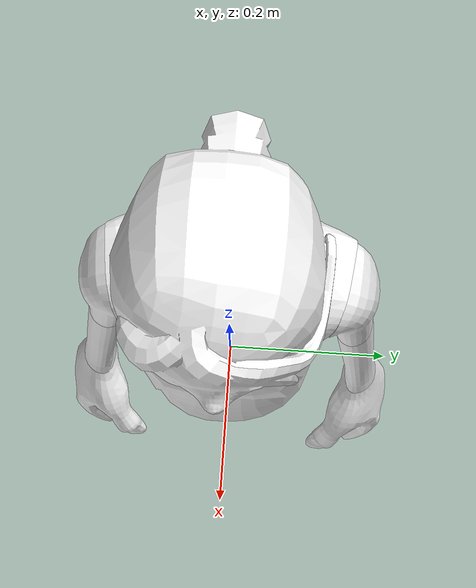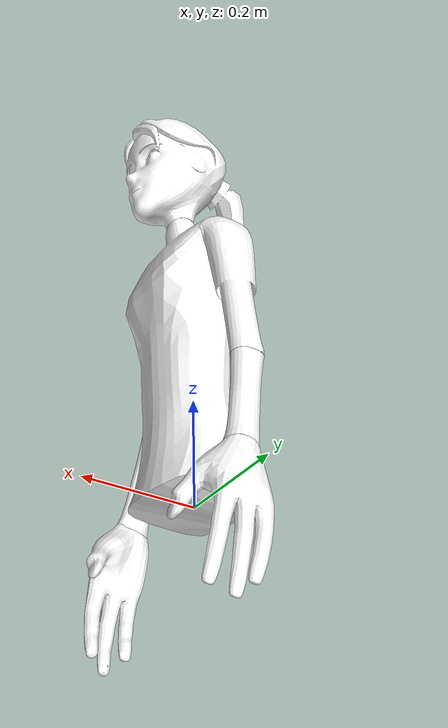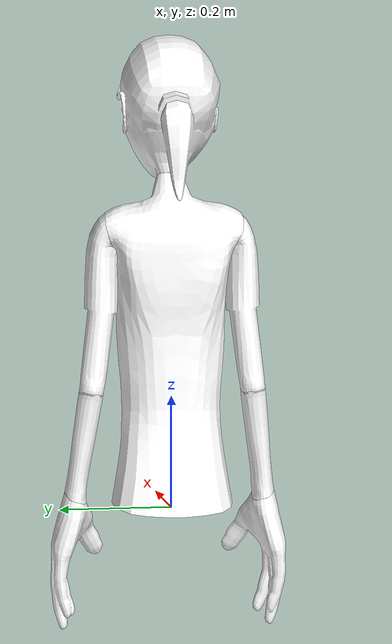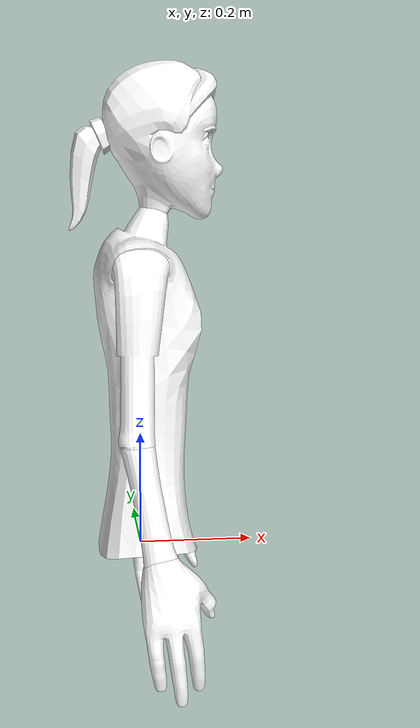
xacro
<?xml version="1.0"?>
<robot xmlns:xacro="http://www.ros.org/wiki/xacro" name="human_torso">
    <material name="white">
        <color rgba="1.0 1.0 1.0 1.0"/>
    </material>

    <xacro:property name="models_path" value="./" />

<xacro:macro name="human_head" params="prefix base_link joint_type *origin">

    <xacro:property name="head_width" value="0.27" />
    <xacro:property name="head_height" value="0.4" />
    <xacro:property name="head_depth" value="0.32" />

    <xacro:property name="tilt_up_limit" value="0.95993" />
    <xacro:property name="tilt_down_limit" value="1.57079" />
    <xacro:property name="tilt_effort" value="1000.0" />
    <xacro:property name="tilt_velocity" value="0.5" />

    <xacro:property name="roll_limit" value="0.61086" />
    <xacro:property name="roll_effort" value="1000.0" />
    <xacro:property name="roll_velocity" value="0.5" />

    <xacro:property name="pan_limit" value="1.22173" />
    <xacro:property name="pan_effort" value="1000.0" />
    <xacro:property name="pan_velocity" value="0.5" />

    <link name="${prefix}head_roll">
        <visual>
            <geometry>
                <mesh filename="${models_path}/head.obj"/>
            </geometry>
            <origin xyz="0 0 0" rpy="0 0 0"/>
            <material name="white"/>
        </visual>
        <collision>
            <geometry>
                <box size="${head_depth} ${head_width} ${head_height}"/>
            </geometry>
            <origin xyz="0.03 0 ${head_height/2 - 0.02}" rpy="0 0 0"/>
        </collision>

        <inertial>
           <mass value="5.0" />
           <origin xyz="0 0 0" rpy="0 0 0"/>
           <inertia ixx="0.5"  ixy="0"  ixz="0" iyy="0.5" iyz="0" izz="0.5" />
        </inertial>
    </link>

    <link name="${prefix}head_tilt">
        <inertial>
           <mass value="0.01" />
           <origin xyz="0 0 0" rpy="0 0 0"/>
           <inertia ixx="0.001"  ixy="0"  ixz="0" iyy="0.001" iyz="0" izz="0.001" />
        </inertial>
    </link>

    <link name="${prefix}head_pan">
        <inertial>
           <mass value="0.01" />
           <origin xyz="0 0 0" rpy="0 0 0"/>
           <inertia ixx="0.001"  ixy="0"  ixz="0" iyy="0.001" iyz="0" izz="0.001" />
        </inertial>
    </link>

    <joint name="${prefix}pan_joint" type="${joint_type}">
        <axis xyz="0 0 1"/>
        <limit
                effort="${pan_effort}"
                lower="-${pan_limit}"
                upper="${pan_limit}"
                velocity="${pan_velocity}"
        />
        <xacro:insert_block name="origin" />
        <parent link="${base_link}"/>
        <child link="${prefix}head_pan"/>
    </joint>

    <joint name="${prefix}tilt_joint" type="${joint_type}">
        <axis xyz="0 1 0"/>
        <limit
                effort="${tilt_effort}"
                lower="-${tilt_down_limit}"
                upper="${tilt_up_limit}"
                velocity="${tilt_velocity}"
        />
        <origin xyz="0 0 0" rpy="0 0 0"/>
        <parent link="${prefix}head_pan"/>
        <child link="${prefix}head_tilt"/>
    </joint>

    <joint name="${prefix}roll_joint" type="${joint_type}">
        <axis xyz="1 0 0"/>
        <limit
                effort="${roll_effort}"
                lower="-${roll_limit}"
                upper="${roll_limit}"
                velocity="${roll_velocity}"
        />
        <origin xyz="0 0 0" rpy="0 0 0"/>
        <parent link="${prefix}head_tilt"/>
        <child link="${prefix}head_roll"/>
    </joint>
</xacro:macro>

<xacro:macro name="human_arm" params="prefix base_link reflect joint_type *origin">

    <xacro:property name="arm_width" value="0.1" />
    <xacro:property name="arm_height" value="0.33" />
    <xacro:property name="arm_depth" value="0.07" />

    <xacro:property name="forearm_width" value="0.07" />
    <xacro:property name="forearm_height" value="0.2" />
    <xacro:property name="forearm_depth" value="0.07" />

    <xacro:property name="palm_width" value="0.16" />
    <xacro:property name="palm_height" value="0.23" />
    <xacro:property name="palm_depth" value="0.11" />

    <xacro:property name="shoulder_abduction_limit" value="3.1415" />
    <xacro:property name="shoulder_adduction_limit" value="0.0" />
    <xacro:property name="shoulder_abduction_adduction_effort" value="1000.0" />
    <xacro:property name="shoulder_abduction_adduction_velocity" value="2.5" />

    <xacro:property name="shoulder_horizontal_flexion_limit" value="2.26892" />
    <xacro:property name="shoulder_horizontal_extension_limit" value="-0.78539" />
    <xacro:property name="shoulder_horizontal_flexion_extension_effort" value="1000.0" />
    <xacro:property name="shoulder_horizontal_flexion_extension_velocity" value="2.5" />

    <xacro:property name="shoulder_vertical_flexion_limit" value="3.1415" />
    <xacro:property name="shoulder_vertical_extension_limit" value="-1.04719" />
    <xacro:property name="shoulder_vertical_flexion_extension_effort" value="1000.0" />
    <xacro:property name="shoulder_vertical_flexion_extension_velocity" value="2.5" />

    <xacro:property name="elbow_flexion_limit" value="0" />
    <xacro:property name="elbow_extension_limit" value="-2.61799" />
    <xacro:property name="elbow_flexion_extension_effort" value="1000.0" />
    <xacro:property name="elbow_flexion_extension_velocity" value="2.5" />

    <xacro:property name="elbow_pronation_limit" value="-3.1415" />
    <xacro:property name="elbow_supination_limit" value="1.57079" />
    <xacro:property name="elbow_pronation_supination_effort" value="1000.0" />
    <xacro:property name="elbow_pronation_supination_velocity" value="2.5" />

    <xacro:property name="wrist_flexion_limit" value="-1.57079" />
    <xacro:property name="wrist_extension_limit" value="1.22173" />
    <xacro:property name="wrist_flexion_extension_effort" value="1000.0" />
    <xacro:property name="wrist_flexion_extension_velocity" value="2.5" />

    <xacro:property name="wrist_radial_limit" value="-0.34906" />
    <xacro:property name="wrist_ulnar_limit" value="0.87266" />
    <xacro:property name="wrist_radial_ulnar_effort" value="1000.0" />
    <xacro:property name="wrist_radial_ulnar_velocity" value="2.5" />

    <link name="${prefix}shoulder_abduction_adduction">
        <inertial>
           <mass value="0.01" />
           <origin xyz="0 0 0" rpy="0 0 0"/>
           <inertia ixx="0.001"  ixy="0"  ixz="0" iyy="0.001" iyz="0" izz="0.001" />
        </inertial>
    </link>

    <link name="${prefix}shoulder_horizontal_flexion_extension">
        <inertial>
           <mass value="0.01" />
           <origin xyz="0 0 0" rpy="0 0 0"/>
           <inertia ixx="0.001"  ixy="0"  ixz="0" iyy="0.001" iyz="0" izz="0.001" />
        </inertial>
    </link>

    <link name="${prefix}shoulder_vertical_flexion_extension">
        <visual>
            <geometry>
                <mesh filename="${models_path}/${prefix}arm.obj"/>
            </geometry>
            <origin xyz="0 0 0" rpy="0 0 0"/>
            <material name="white"/>
        </visual>
        <collision>
            <geometry>
                <box size="${arm_width} ${arm_depth} ${arm_height}"/>
            </geometry>
            <origin xyz="0 ${reflect*0.015} ${-arm_height/2+0.03}" rpy="${reflect*0.1} 0 0"/>
        </collision>

        <inertial>
           <mass value="3.5" />
           <origin xyz="0 0 0" rpy="0 0 0"/>
           <inertia ixx="0.3"  ixy="0"  ixz="0" iyy="0.3" iyz="0" izz="0.3" />
        </inertial>
    </link>

    <link name="${prefix}elbow_flexion_extension">
        <inertial>
           <mass value="0.01" />
           <origin xyz="0 0 0" rpy="0 0 0"/>
           <inertia ixx="0.001"  ixy="0"  ixz="0" iyy="0.001" iyz="0" izz="0.001" />
        </inertial>
    </link>

    <link name="${prefix}elbow_pronation_supination">
        <visual>
            <geometry>
                <mesh filename="${models_path}/${prefix}forearm.obj"/>
            </geometry>
            <origin xyz="0 0 0" rpy="0 0 0"/>
            <material name="white"/>
        </visual>
        <collision>
            <geometry>
                <box size="${forearm_width} ${forearm_depth} ${forearm_height}"/>
            </geometry>
            <origin xyz="0.02 ${reflect*0.015} ${-forearm_height/2}" rpy="${reflect*0.2} -0.2 0"/>
        </collision>

        <inertial>
           <mass value="2.5" />
           <origin xyz="0 0 0" rpy="0 0 0"/>
           <inertia ixx="0.2"  ixy="0"  ixz="0" iyy="0.2" iyz="0" izz="0.2" />
        </inertial>
    </link>

    <link name="${prefix}wrist_flexion_extension">
        <inertial>
           <mass value="0.01" />
           <origin xyz="0 0 0" rpy="0 0 0"/>
           <inertia ixx="0.001"  ixy="0"  ixz="0" iyy="0.001" iyz="0" izz="0.001" />
        </inertial>
    </link>

    <link name="${prefix}wrist_radial_ulnar">
        <visual>
            <geometry>
                <mesh filename="${models_path}/${prefix}hand.obj"/>
            </geometry>
            <origin xyz="0 0 0" rpy="0 0 0"/>
            <material name="white"/>
        </visual>
        <collision>
            <geometry>
                <mesh filename="${models_path}/${prefix}hand.obj"/>
            </geometry>
            <!--origin xyz="0.025 ${reflect*0.0} ${-palm_height/2 + 0.02}" rpy="0 0 0"/-->
            <origin xyz="0 0 0" rpy="0 0 0"/>
        </collision>

        <inertial>
           <mass value="1.5" />
           <origin xyz="0 0 0" rpy="0 0 0"/>
           <inertia ixx="0.1"  ixy="0"  ixz="0" iyy="0.1" iyz="0" izz="0.1" />
        </inertial>
    </link>

    <joint name="${prefix}shoulder_abduction_adduction_joint" type="${joint_type}">
        <axis xyz="${reflect} 0 0"/>
        <limit
                effort="${shoulder_abduction_adduction_effort}"
                lower="${shoulder_adduction_limit}"
                upper="${shoulder_abduction_limit}"
                velocity="${shoulder_abduction_adduction_velocity}"
        />
        <xacro:insert_block name="origin" />
        <parent link="${base_link}"/>
        <child link="${prefix}shoulder_abduction_adduction"/>
    </joint>

    <joint name="${prefix}shoulder_horizontal_flexion_extension_joint" type="${joint_type}">
        <axis xyz="0 0 ${-1*reflect}"/>
        <limit
            effort="${shoulder_horizontal_flexion_extension_effort}"
            lower="${shoulder_horizontal_extension_limit}"
            upper="${shoulder_horizontal_flexion_limit}"
            velocity="${shoulder_horizontal_flexion_extension_velocity}"
        />
        <origin rpy="0 0 0" xyz="0 0 0"/>
        <parent link="${prefix}shoulder_abduction_adduction"/>
        <child link="${prefix}shoulder_horizontal_flexion_extension"/>
    </joint>

    <joint name="${prefix}shoulder_vertical_flexion_extension_joint" type="${joint_type}">
        <axis xyz="0 -1 0"/>
        <limit
            effort="${shoulder_vertical_flexion_extension_effort}"
            lower="${shoulder_vertical_extension_limit}"
            upper="${shoulder_vertical_flexion_limit}"
            velocity="${shoulder_vertical_flexion_extension_velocity}"
        />
        <origin rpy="0 0 0" xyz="0 0 0"/>
        <parent link="${prefix}shoulder_horizontal_flexion_extension"/>
        <child link="${prefix}shoulder_vertical_flexion_extension"/>
    </joint>

    <joint name="${prefix}elbow_flexion_extension_joint" type="${joint_type}">
        <axis xyz="0 1 0"/>
        <limit
            effort="${elbow_flexion_extension_effort}"
            lower="${elbow_extension_limit}"
            upper="${elbow_flexion_limit}"
            velocity="${elbow_flexion_extension_velocity}"
        />
        <origin rpy="0 0 0" xyz="-0.01223 ${0.03506*reflect} -0.283379"/>
        <parent link="${prefix}shoulder_vertical_flexion_extension"/>
        <child link="${prefix}elbow_flexion_extension"/>
    </joint>

    <joint name="${prefix}elbow_pronation_supination_joint" type="${joint_type}">
        <axis xyz="0 0 -1"/>
        <limit
            effort="${elbow_pronation_supination_effort}"
            lower="${elbow_pronation_limit}"
            upper="${elbow_supination_limit}"
            velocity="${elbow_pronation_supination_velocity}"
        />
        <origin rpy="0 0 0" xyz="0 0 0"/>
        <parent link="${prefix}elbow_flexion_extension"/>
        <child link="${prefix}elbow_pronation_supination"/>
    </joint>

    <joint name="${prefix}wrist_flexion_extension_joint" type="${joint_type}">
        <axis xyz="0 -1 0"/>
        <limit
            effort="${wrist_flexion_extension_effort}"
            lower="${wrist_flexion_limit}"
            upper="${wrist_extension_limit}"
            velocity="${wrist_flexion_extension_velocity}"
        />
        <origin rpy="0 0 0" xyz="0.03606 ${0.02363*reflect} -0.19094"/>
        <parent link="${prefix}elbow_pronation_supination"/>
        <child link="${prefix}wrist_flexion_extension"/>
    </joint>

    <joint name="${prefix}wrist_radial_ulnar_joint" type="${joint_type}">
        <axis xyz="${reflect} 0 0"/>
        <limit
            effort="${wrist_radial_ulnar_effort}"
            lower="${wrist_radial_limit}"
            upper="${wrist_ulnar_limit}"
            velocity="${wrist_radial_ulnar_velocity}"
        />
        <origin rpy="0 0 0" xyz="0 0 0"/>
        <parent link="${prefix}wrist_flexion_extension"/>
        <child link="${prefix}wrist_radial_ulnar"/>
    </joint>

    <link name="${prefix}tip">
        <visual>
            <geometry>
                <box size="0.001 0.01 0.001"/>
            </geometry>
            <origin xyz="0 0 0" rpy="0 0 0"/>
            <material name="white"/>
        </visual>
        <collision>
            <geometry>
                <box size="0.001 0.01 0.001"/>
            </geometry>
            <origin xyz="0 0 0" rpy="0 0 0"/>
        </collision>

        <inertial>
           <mass value="0.001" />
           <origin xyz="0 0 0" rpy="0 0 0"/>
           <inertia ixx="0.0001"  ixy="0"  ixz="0" iyy="0.0001" iyz="0" izz="0.0001" />
        </inertial>
    </link>

    <joint name="${prefix}tip_joint" type="fixed">
        <origin rpy="0 ${3.1415*reflect} 0" xyz="0.03 ${0.015*reflect} -${palm_height}"/>
        <parent link="${prefix}wrist_radial_ulnar"/>
        <child link="${prefix}tip"/>
    </joint>

</xacro:macro>

<xacro:macro name="torso_base" params="prefix base_link translate_joint_type rotate_joint_type *origin">
    <xacro:property name="torso_forward_limit" value="0.05" />
    <xacro:property name="torso_backward_limit" value="0.1" />
    <xacro:property name="torso_left_limit" value="0.2" />
    <xacro:property name="torso_right_limit" value="0.2" />
    <xacro:property name="torso_forward_tilt_limit" value="0.2" />
    <xacro:property name="torso_backward_tilt_limit" value="0.05" />
    <xacro:property name="torso_pan_limit" value="0.2" />

    <xacro:property name="torso_depth" value="0.2" />
    <xacro:property name="torso_width" value="0.22" />
    <xacro:property name="torso_height" value="0.59" />
    <xacro:property name="torso_joint_type" value="revolute" />

    <!--    Left/right translation-->
    <link name="torso_sagital_link">
        <inertial>
           <mass value="0.01" />
           <origin xyz="0 0 0" rpy="0 0 0"/>
           <inertia ixx="0.001"  ixy="0"  ixz="0" iyy="0.001" iyz="0" izz="0.001" />
        </inertial>
    </link>

    <!--    Forward/backward translation-->
    <link name="torso_frontal_link">
        <inertial>
           <mass value="0.01" />
           <origin xyz="0 0 0" rpy="0 0 0"/>
           <inertia ixx="0.001"  ixy="0"  ixz="0" iyy="0.001" iyz="0" izz="0.001" />
        </inertial>
    </link>

    <!--    Left/Right rotation-->
    <link name="torso_pan">
        <inertial>
           <mass value="0.01" />
           <origin xyz="0 0 0" rpy="0 0 0"/>
           <inertia ixx="0.001"  ixy="0"  ixz="0" iyy="0.001" iyz="0" izz="0.001" />
        </inertial>
    </link>

    <!--    Forward/backward leaning-->
    <link name="torso">
        <visual>
            <geometry>
                <mesh filename="${models_path}/torso.obj"/>
            </geometry>
            <origin xyz="0 0 0" rpy="0 0 0"/>
            <material name="white"/>
        </visual>
        <collision>
            <geometry>
                <box size="${torso_depth} ${torso_width} ${torso_height}"/>
            </geometry>
            <origin xyz="0 0 ${torso_height/2}" rpy="0 0 0"/>
        </collision>
        <inertial>
           <mass value="40.0" />
           <origin xyz="0 0 0" rpy="0 0 0"/>
           <inertia ixx="4.0"  ixy="0"  ixz="0" iyy="4.0" iyz="0" izz="4.0" />
        </inertial>
    </link>

    <joint name="torso_tilt_joint" type="${rotate_joint_type}">
        <axis xyz="0 1 0"/>
        <limit effort="10000.0" lower="-${torso_backward_tilt_limit}" upper="${torso_forward_tilt_limit}" velocity="0.5"/>
        <origin rpy="0 0 0" xyz="0 0 0"/>
        <parent link="torso_pan"/>
        <child link="torso"/>
    </joint>

    <joint name="torso_pan_joint" type="${rotate_joint_type}">
        <axis xyz="0 0 1"/>
        <limit effort="10000.0" lower="-${torso_pan_limit}" upper="${torso_pan_limit}" velocity="0.5"/>
        <origin rpy="0 0 0" xyz="0 0 0"/>
        <parent link="torso_sagital_link"/>
        <child link="torso_pan"/>
    </joint>

    <joint name="torso_sagital_joint" type="${translate_joint_type}">
        <axis xyz="0 1 0"/>
        <limit effort="10000.0" lower="-${torso_right_limit}" upper="${torso_left_limit}" velocity="0.2"/>
        <origin rpy="0 0 0" xyz="0 0 0"/>
        <parent link="torso_frontal_link"/>
        <child link="torso_sagital_link"/>
    </joint>

    <joint name="torso_frontal_joint" type="${translate_joint_type}">
        <axis xyz="1 0 0"/>
        <limit effort="10000.0" lower="-${torso_backward_limit}" upper="${torso_forward_limit}" velocity="0.2"/>
        <xacro:insert_block name="origin"/>
        <parent link="${base_link}"/>
        <child link="torso_frontal_link"/>
    </joint>

</xacro:macro>

    <link name="base_link">
        <inertial>
           <mass value="0.01" />
           <origin xyz="0 0 0" rpy="0 0 0"/>
           <inertia ixx="0.001"  ixy="0"  ixz="0" iyy="0.001" iyz="0" izz="0.001" />
        </inertial>
    </link>
    <xacro:torso_base prefix="" base_link="base_link" rotate_joint_type="revolute" translate_joint_type="prismatic">
        <origin xyz=" 0 0 0" rpy="0 0 0" />
    </xacro:torso_base>

    <xacro:human_arm prefix="l_" base_link="torso" reflect="1" joint_type="revolute">
        <origin xyz=" 0 0.10988 0.4938" rpy="0 0 0" />
    </xacro:human_arm>

    <xacro:human_arm prefix="r_" base_link="torso" reflect="-1" joint_type="fixed">
        <origin xyz=" -0.00304 -0.10786 0.49489" rpy="0 0 0" />
    </xacro:human_arm>

    <xacro:human_head prefix="head_" base_link="torso" joint_type="fixed">
        <origin xyz=" 0.0255 0 0.59" rpy="0 0 0" />
    </xacro:human_head>

</robot>
